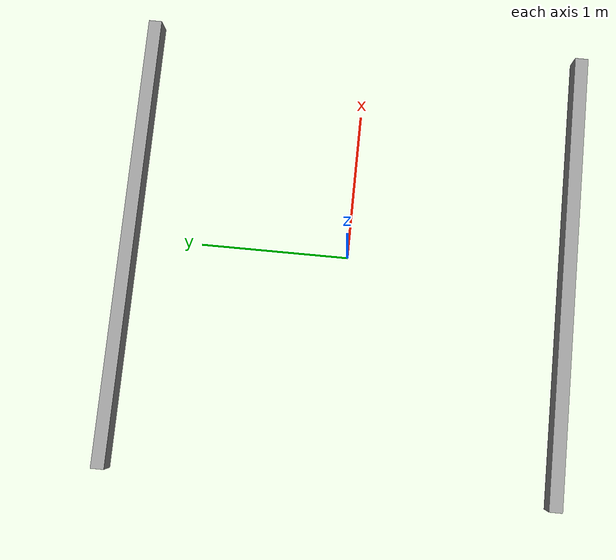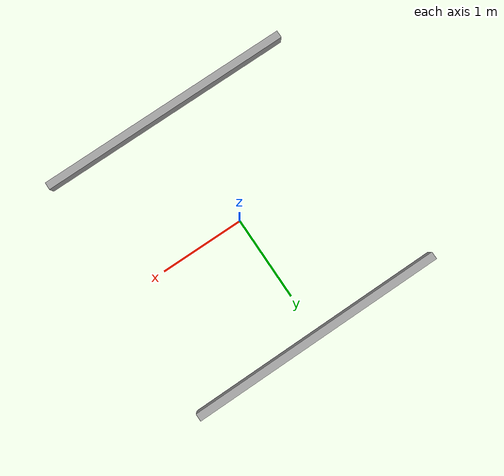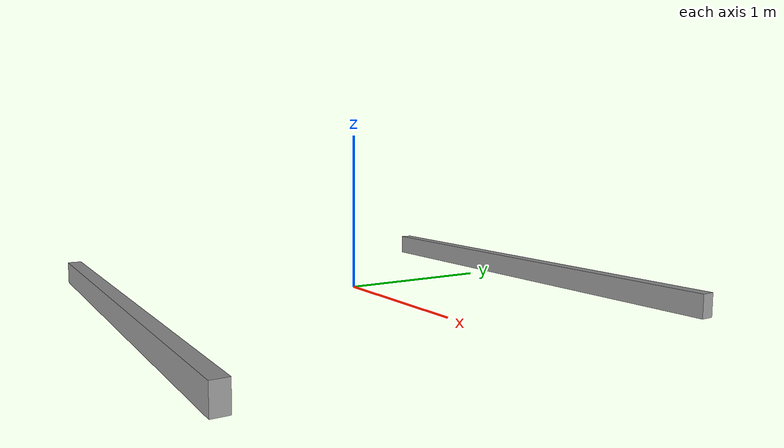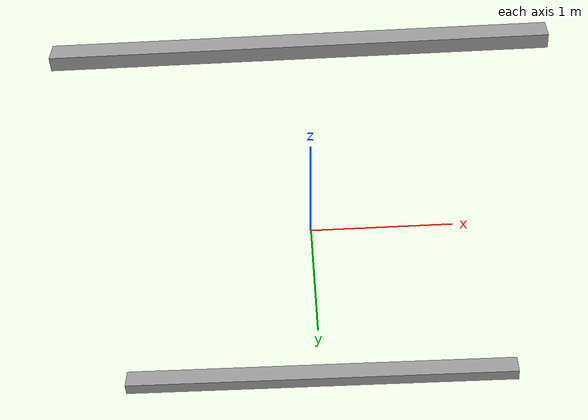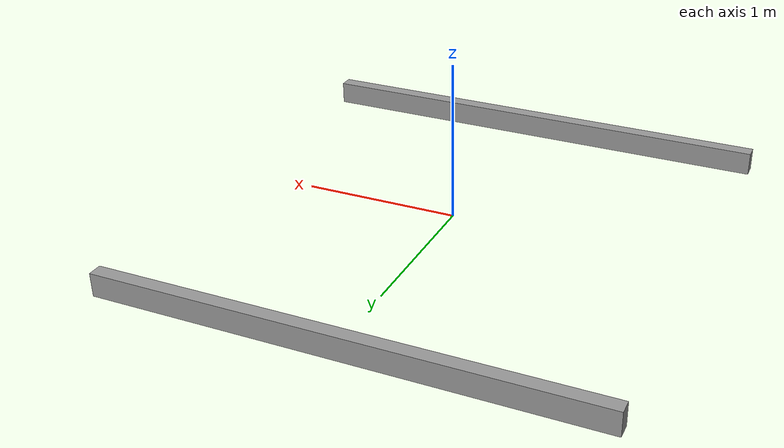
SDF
<?xml version='1.0'?>
<sdf version='1.7'>
  <model name='curb'>
    <pose>0.0 1.5 0 0 -0 0</pose>
    <link name='Wall_0'>
      <collision name='Wall_0_Collision'>
        <geometry>
          <box>
            <size>3.09 0.09 0.15</size>
          </box>
        </geometry>
        <pose>0 0 0.0 0 -0 0</pose>
      </collision>
      <visual name='Wall_0_Visual'>
        <pose>0 0 0.0 0 -0 0</pose>
        <geometry>
          <box>
            <size>3.09 0.09 0.15</size>
          </box>
        </geometry>
        <material>
          <script>
            <uri>file://media/materials/scripts/gazebo.material</uri>
            <name>Gazebo/Grey</name>
          </script>
          <ambient>1 1 1 0.5</ambient>
          <diffuse>0 0 0 0</diffuse>
        </material>
        <meta>
          <layer>0</layer>
        </meta>
      </visual>
      <pose>0.0 0.0 0 0 -0 3.14159</pose>
    </link>
    <link name='Wall_2'>
      <collision name='Wall_2_Collision'>
        <geometry>
          <box>
            <size>3.09 0.09 0.15</size>
          </box>
        </geometry>
        <pose>0 0 0 0 -0 0</pose>
      </collision>
      <visual name='Wall_2_Visual'>
        <pose>0 0 0 0 -0 0</pose>
        <geometry>
          <box>
            <size>3.09 0.09 0.15</size>
          </box>
        </geometry>
        <material>
          <script>
            <uri>file://media/materials/scripts/gazebo.material</uri>
            <name>Gazebo/Grey</name>
          </script>
          <ambient>1 1 1 0.5</ambient>
          <diffuse>0 0 0 0</diffuse>
        </material>
        <meta>
          <layer>0</layer>
        </meta>
      </visual>
      <pose>0.0 -3.0 0 0 -0 0.0</pose>
    </link>
    <static>1</static>
  </model>
</sdf>
